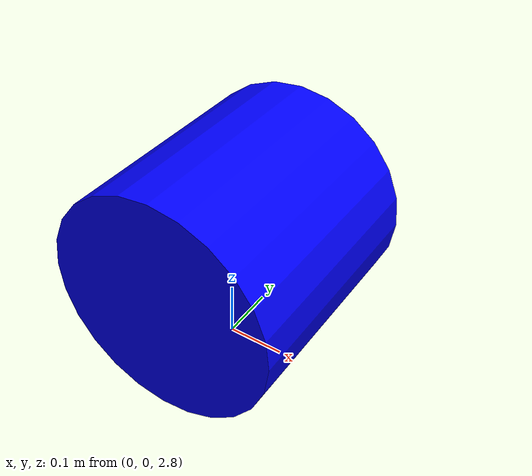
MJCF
<mujoco model="example">

  <worldbody>
      <geom type="plane" size="10 10 0.1" pos="0 0 -5" rgba=".9 0 0 1" />
      <light diffuse=".5 .5 .5" pos="0 0 0" dir="0 0 -1" />
      <body name="pitch" pos="0 0 0">
        <joint name="joint_0" pos="0 0 0" axis="0 1 0" />
        <geom type="cylinder" size=".2 .2" pos="0 0 3" euler="90 0 0" rgba="0 0 1 1" />
      </body>

  </worldbody>

</mujoco>
